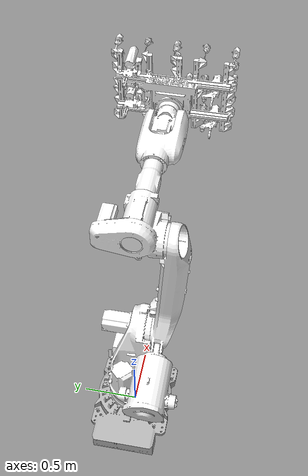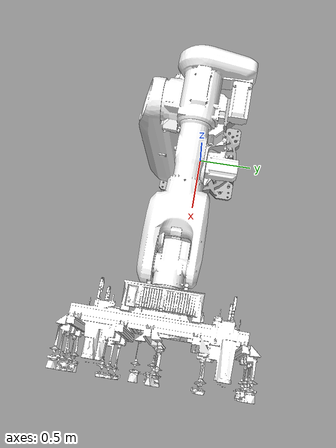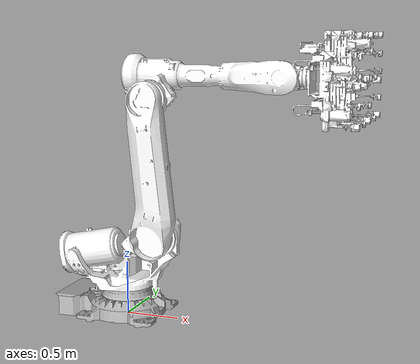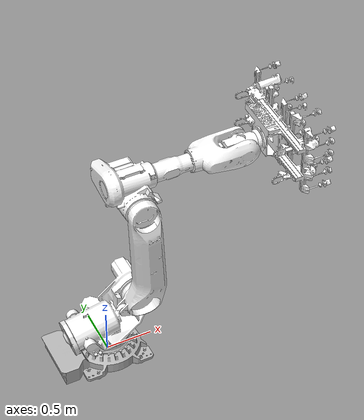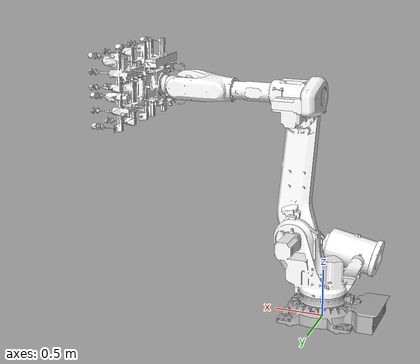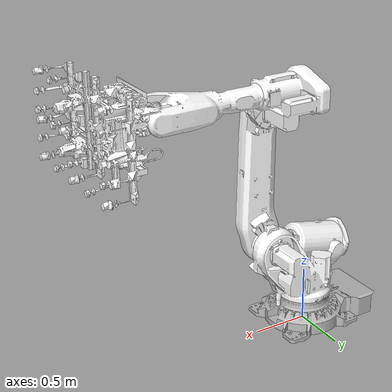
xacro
<?xml version="1.0" ?>
<robot xmlns:xacro="http://ros.org/wiki/xacro" name="abb_irb6700_205_280">
  <!-- CONFIG -->
  <xacro:arg name="use_fake_hardware" default="true"/>
  <xacro:property name="use_fake_hardware" value="$(arg use_fake_hardware)"/>
  <!-- abb_ros2 -->
  <xacro:arg name="rws_ip" default="None"/>
  <xacro:property name="rws_ip" value="$(arg rws_ip)"/>
  <xacro:arg name="rws_port" default="80"/>
  <xacro:property name="rws_port" value="$(arg rws_port)"/>

  <!-- Robot description -->
  <xacro:include filename="$(find abb_irb6700_205_280_support)/urdf/abb_irb6700_205_280_macro.xacro"/>
  <xacro:abb_irb6700_205_280 prefix=""/>

  <!-- TOOL -->

  <!-- ProPoint Draping Gripper (Amura) -->

  <xacro:macro name="amura_gripper" params="prefix">
  <link name="${prefix}tool_gripper">
    <visual>
      <origin xyz="0 0 0" rpy="${pi} 0 ${-pi/2}"/>
      <geometry>
        <mesh filename="package://abb_irb6700_205_280_support/meshes/ProPoint_gripper_20260128/251271_Gripper_Amura_20260128_STL.stl"
              scale="1e-4 1e-4 1e-4"/>
      </geometry>
      <material name="white"/>
    </visual>
    <collision>
      <origin xyz="0 0 0" rpy="${pi} 0 ${-pi/2}"/>
      <geometry>
        <mesh filename="package://abb_irb6700_205_280_support/meshes/ProPoint_gripper_20260128/Collision_251271_Gripper_Amura_20260128_STL.stl"
              scale="1e-4 1e-4 1e-4"/>
      </geometry>
      <material name="white"/>
    </collision>
  </link>
  <joint name="${prefix}flange_tool_gripper" type="fixed">
    <origin xyz="0 0 0" rpy="0 0 0" />
    <parent link="${prefix}tool0" />
    <child link="${prefix}tool_gripper" />
  </joint>
  </xacro:macro>
  <xacro:amura_gripper prefix=""/>

  <!-- Camera Mount and Camera tool (Robotics Lab) -->

  <!-- ros2_control -->
  <xacro:include filename="$(find abb_irb6700_205_280_support)/urdf/abb_irb6700_205_280.ros2_control.xacro" />
  <!-- name="ABBMultiInterfaceHardware" -->
  <xacro:abb_ros2_control
    name="abb_irb6700_205_280_hw"
    prefix=""
    use_fake_hardware="${use_fake_hardware}"
    rws_ip="${rws_ip}"
    rws_port="${rws_port}"/>
</robot>

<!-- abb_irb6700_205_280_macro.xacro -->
<robot xmlns:xacro="http://ros.org/wiki/xacro">
<xacro:macro name="abb_irb6700_205_280" params="prefix">

<!-- material list -->
<material name="white">
  <color rgba="1 1 1 1"/>
</material>

<material name="grey">
  <color rgba=".7 .7 .7 1"/>
</material>

<material name="yellow">
  <color rgba=".9 .9 0 0.2"/>
</material>

<!--  link list  -->
<link name="${prefix}base_link">
  <visual>
    <origin xyz="0 0 0" rpy="0 0 0"/>
    <geometry>
      <mesh filename="package://abb_irb6700_205_280_support/meshes/irb6700_205_280/ManipulatorJoint0.stl" scale="0.001 0.001 0.001"/>
    </geometry>
    <material name="grey"/>
  </visual>
  <collision>
  <origin xyz="0 0 0" rpy="0 0 0"/>
  <geometry>
  <mesh filename="package://abb_irb6700_205_280_support/meshes/irb6700_205_280/ManipulatorJoint0.stl" scale="0.001 0.001 0.001"/>
  </geometry>
    <material name="grey"/>
  </collision>
</link>

<link name="${prefix}link_1">
  <visual>
  <origin xyz="0 0 -0.78" rpy="0 0 0"/>
  <geometry>
  <mesh filename="package://abb_irb6700_205_280_support/meshes/irb6700_205_280/ManipulatorJoint1.stl" scale="0.001 0.001 0.001"/>
  </geometry>
  <material name="white"/>
  </visual>
  <collision>
  <origin xyz="0 0 -0.78" rpy="0 0 0"/>
  <geometry>
  <mesh filename="package://abb_irb6700_205_280_support/meshes/irb6700_205_280/ManipulatorJoint1.stl" scale="0.001 0.001 0.001"/>
  </geometry>
    <material name="white"/>
  </collision>
</link>

<link name="${prefix}link_2">
  <visual>
  <origin xyz="-0.32 0 -0.78" rpy="0 0 0"/>
  <geometry>
  <mesh filename="package://abb_irb6700_205_280_support/meshes/irb6700_205_280/ManipulatorJoint2.stl" scale="0.001 0.001 0.001"/>
  </geometry>
    <material name="white"/>
  </visual>
  <collision>
  <origin xyz="-0.32 0 -0.78" rpy="0 0 0"/>
  <geometry>
  <mesh filename="package://abb_irb6700_205_280_support/meshes/irb6700_205_280/ManipulatorJoint2.stl" scale="0.001 0.001 0.001"/>
  </geometry>
    <material name="white"/>
  </collision>
</link>

<link name="${prefix}link_3">
  <visual>
  <origin xyz="-0.32 0 -2.06" rpy="0 0 0"/>
  <geometry>
  <mesh filename="package://abb_irb6700_205_280_support/meshes/irb6700_205_280/ManipulatorJoint3.stl" scale="0.001 0.001 0.001"/>
  </geometry>
    <material name="white"/>
  </visual>
  <collision>
  <origin xyz="-0.32 0 -2.06" rpy="0 0 0"/>
  <geometry>
  <mesh filename="package://abb_irb6700_205_280_support/meshes/irb6700_205_280/ManipulatorJoint3.stl" scale="0.001 0.001 0.001"/>
  </geometry>
    <material name="white"/>
  </collision>
</link>

<link name="${prefix}link_4">
  <visual>
  <origin xyz="-0.32 0 -2.26" rpy="0 0 0"/>
  <geometry>
  <mesh filename="package://abb_irb6700_205_280_support/meshes/irb6700_205_280/ManipulatorJoint4.stl" scale="0.001 0.001 0.001"/>
  </geometry>
    <material name="white"/>
  </visual>
  <collision>
  <origin xyz="-0.32 0 -2.26" rpy="0 0 0"/>
  <geometry>
  <mesh filename="package://abb_irb6700_205_280_support/meshes/irb6700_205_280/ManipulatorJoint4.stl" scale="0.001 0.001 0.001"/>
  </geometry>
    <material name="white"/>
  </collision>
</link>

<link name="${prefix}link_5">
  <visual>
  <origin xyz="-1.5025 0 -2.26" rpy="0 0 0"/>
  <geometry>
  <mesh filename="package://abb_irb6700_205_280_support/meshes/irb6700_205_280/ManipulatorJoint5.stl" scale="0.001 0.001 0.001"/>
  </geometry>
    <material name="white"/>
  </visual>
  <collision>
  <origin xyz="-1.5025 0 -2.26" rpy="0 0 0"/>
  <geometry>
  <mesh filename="package://abb_irb6700_205_280_support/meshes/irb6700_205_280/ManipulatorJoint5.stl" scale="0.001 0.001 0.001"/>
  </geometry>
    <material name="white"/>
  </collision>
</link>

<link name="${prefix}link_6">
  <visual>
  <origin xyz="-1.7025 0 -2.26" rpy="0 0 0"/>
  <geometry>
  <mesh filename="package://abb_irb6700_205_280_support/meshes/irb6700_205_280/ManipulatorJoint6.stl" scale="0.001 0.001 0.001"/>
  </geometry>
    <material name="white"/>
  </visual>
  <collision>
  <origin xyz="-1.7025 0 -2.26" rpy="0 0 0"/>
  <geometry>
  <mesh filename="package://abb_irb6700_205_280_support/meshes/irb6700_205_280/ManipulatorJoint6.stl" scale="0.001 0.001 0.001"/>
  </geometry>
    <material name="white"/>
  </collision>
</link>

<!--  joint list -->

<joint name="${prefix}joint_1" type="revolute">
  <origin xyz="0 0 0.78" rpy="0 0 0"/>
  <parent link="${prefix}base_link"/>
  <child link="${prefix}link_1"/>
  <axis xyz="0 0 1"/>
  <limit lower="-${radians(170)}" upper="${radians(170)}" effort="0" velocity="${radians(110)}"/>
</joint>

<joint name="${prefix}joint_2" type="revolute">
  <origin xyz="0.32 0 0" rpy="0 0 0"/>
  <parent link="${prefix}link_1"/>
  <child link="${prefix}link_2"/>
  <axis xyz="0 1 0"/>
  <limit lower="-${radians(65)}" upper="${radians(85)}" effort="0" velocity="${radians(110)}"/>
</joint>

<joint name="${prefix}joint_3" type="revolute">
  <origin xyz="0 0 1.280" rpy="0 0 0"/>
  <parent link="${prefix}link_2"/>
  <child link="${prefix}link_3"/>
  <axis xyz="0 1 0"/>
  <limit lower="-${radians(180)}" upper="${radians(70)}" effort="0" velocity="${radians(110)}"/>
</joint>

<joint name="${prefix}joint_4" type="revolute">
  <origin xyz="0 0 0.2" rpy="0 0 0"/>
  <parent link="${prefix}link_3"/>
  <child link="${prefix}link_4"/>
  <axis xyz="1 0 0"/>
  <limit lower="-${radians(300)}" upper="${radians(300)}" effort="0" velocity="${radians(190)}"/>
</joint>

<joint name="${prefix}joint_5" type="revolute">
  <origin xyz="1.1825 0 0" rpy="0 0 0"/>
  <parent link="${prefix}link_4"/>
  <child link="${prefix}link_5"/>
  <axis xyz="0 1 0"/>
  <limit lower="-${radians(130)}" upper="${radians(130)}" effort="0" velocity="${radians(150)}"/>
</joint>

<joint name="${prefix}joint_6" type="revolute">
  <origin xyz="0.2 0 0" rpy="0 0 0"/>
  <parent link="${prefix}link_5"/>
  <child link="${prefix}link_6"/>
  <axis xyz="1 0 0"/>
  <limit lower="-${radians(360)}" upper="${radians(360)}" effort="0" velocity="${radians(210)}"/>
</joint>

<!-- Standardised -->
<!-- ROS-Industrial 'base' frame: base_link to ABB World Coordinates transform -->
<link name="base"/>
<joint name="${prefix}base_link-base" type="fixed">
  <origin xyz="0 0 0" rpy="0 0 0"/>
  <parent link="base"/>
  <child link="${prefix}base_link"/>
</joint>

<!-- TODO review-->
<!-- ROS-Industrial 'flange' frame: attachment point for EEF models -->
<link name="${prefix}flange"/>
<joint type="fixed" name="${prefix}joint_6-flange">
  <origin xyz="0 0 0" rpy="0 0 0"/>
  <parent link="${prefix}link_6"/>
  <child link="${prefix}flange"/>
</joint>

<!-- TODO review-->
<!-- ROS-Industrial 'tool0' frame: all-zeros tool frame -->
<link name="${prefix}tool0" />
<joint name="${prefix}link_6-tool0" type="fixed">
  <origin xyz="0 0 0" rpy="0 ${radians(90)} 0" />
  <parent link="${prefix}flange" />
  <child link="${prefix}tool0" />
</joint>

<!-- ROS-Industrial 'tool_camera' frame: -->
<!-- this was defined for the development phase with an unideal camera mount -->
<!-- Define the new tool_camera frame as it will mounted in the ProPoint gripper -->
<!-- Precision is not needed at all, it is just for the extrinsic calibration phase -->
<!-- to make the camera always look at the calibration board. -->
<link name="${prefix}tool_camera" />
<joint name="${prefix}tool0-tool_camera" type="fixed">
  <origin xyz="${-0.089*cos(15.18*pi/180)} ${-0.089*sin(15.18*pi/180)} 0.11"
        rpy="0 0 ${15.18*pi/180}"/>
  <parent link="${prefix}tool0" />
  <child link="${prefix}tool_camera" />
</joint>

</xacro:macro>
</robot>
